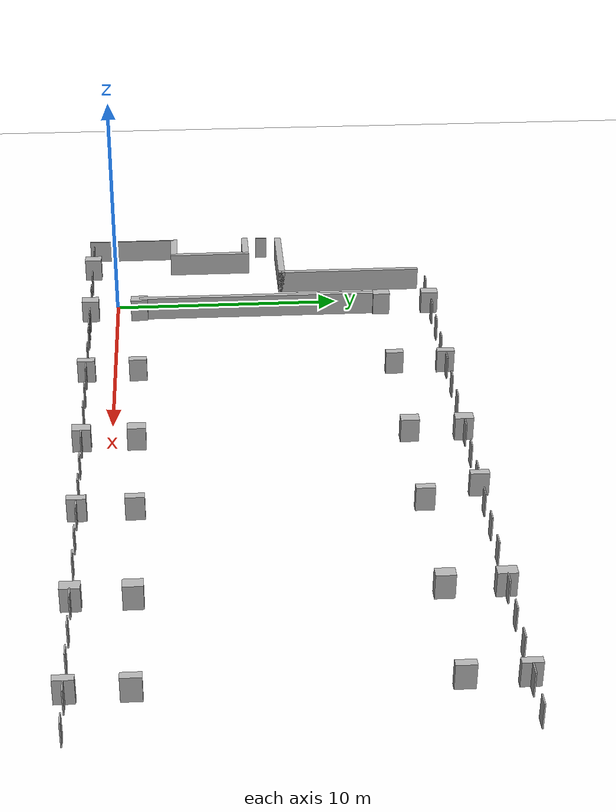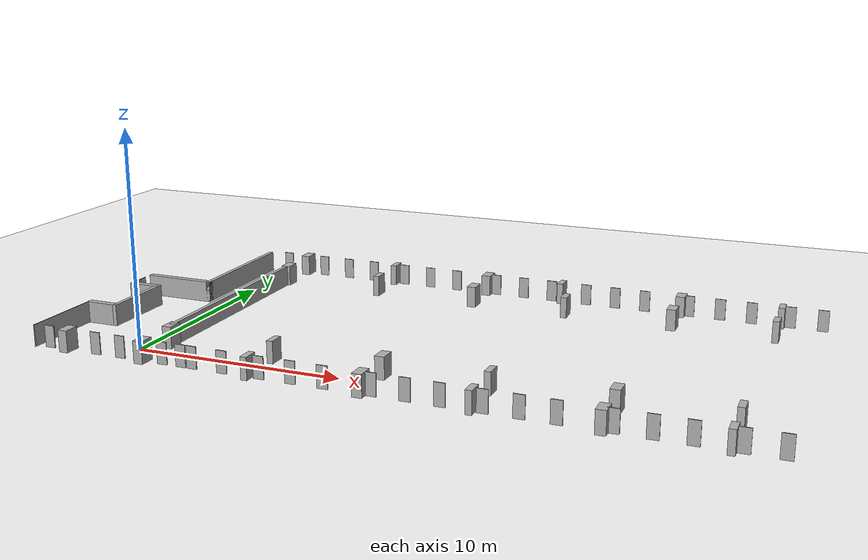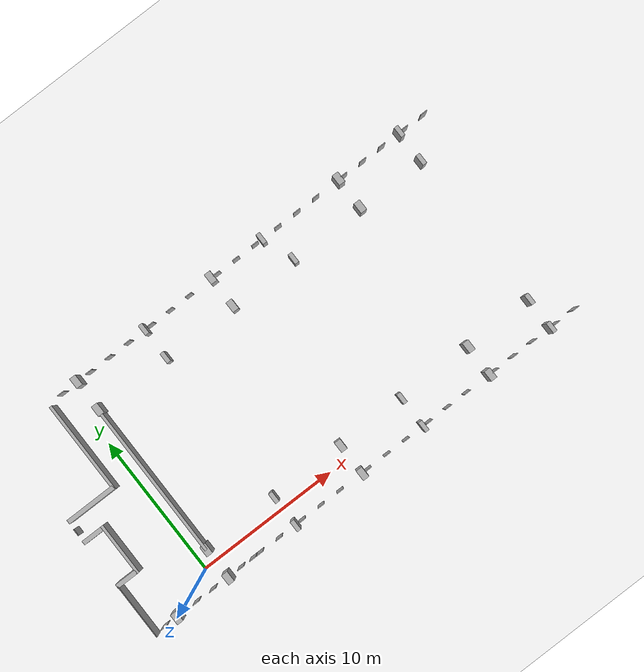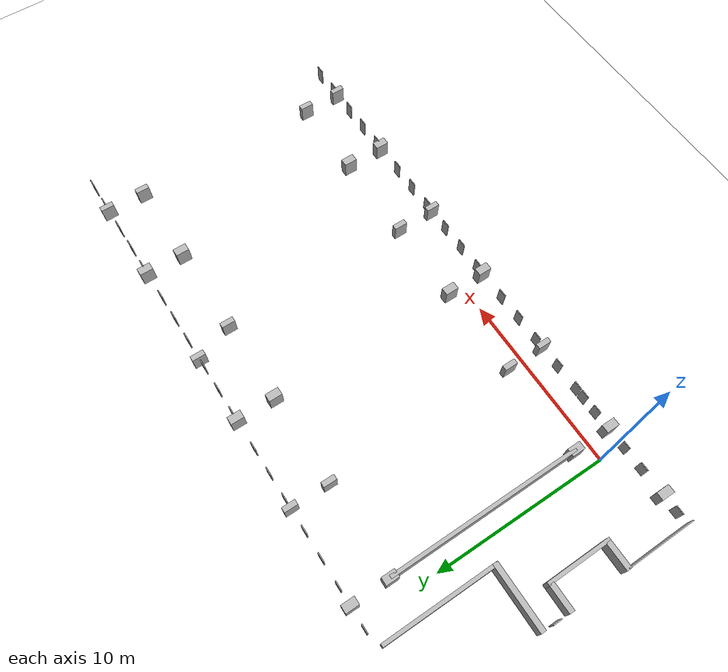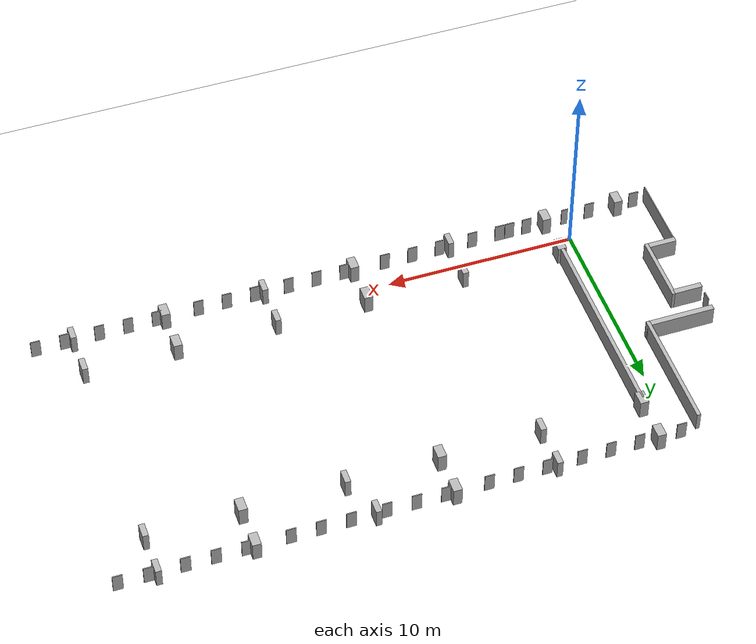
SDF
<sdf version="1.7">
 <world name="simple_corridor">
  <model name="ground_plane">
   <static>true</static>
   <link name="link">
    <collision name="collision">
     <geometry><plane><normal>0 0 1</normal><size>500 500</size></plane></geometry>
    </collision>
    <visual name="visual">
     <geometry><plane><normal>0 0 1</normal><size>500 500</size></plane></geometry>
     <material><ambient>1 1 1 1</ambient><diffuse>1 1 1 1</diffuse></material>
    </visual>
   </link>
  </model>
  <model name="wall_start_on">
   <static>true</static>
   <pose>1 6.5 0 0 0 0</pose>
   <link name="link">
    <collision name="collision"><geometry><box><size>0.2 11 2.0</size></box></geometry></collision>
    <visual name="visual">
     <geometry><box><size>0.2 11 2.0</size></box></geometry>
     <material><diffuse>0.7 0.7 0.7 1</diffuse></material>
    </visual>
   </link>
  </model>
  <model name="column_large_left_1">
   <static>true</static>
   <pose>1 12 0 0 0 0</pose>
   <link name="link">
    <collision name="collision"><geometry><box><size>0.45 0.75 2.0</size></box></geometry></collision>
    <visual name="visual">
     <geometry><box><size>0.45 0.75 2.0</size></box></geometry>
     <material><diffuse>0.7 0.7 0.7 1</diffuse></material>
    </visual>
   </link>
  </model>
  <model name="column_small_left_2">
   <static>true</static>
   <pose>6.3 12 0 0 0 0</pose>
   <link name="link">
    <collision name="collision"><geometry><box><size>0.3 0.75 2.0</size></box></geometry></collision>
    <visual name="visual">
     <geometry><box><size>0.3 0.75 2.0</size></box></geometry>
     <material><diffuse>0.7 0.7 0.7 1</diffuse></material>
    </visual>
   </link>
  </model>
  <model name="column_large_left_3">
   <static>true</static>
   <pose>11.55 12 0 0 0 0</pose>
   <link name="link">
    <collision name="collision"><geometry><box><size>0.45 0.75 2.0</size></box></geometry></collision>
    <visual name="visual">
     <geometry><box><size>0.45 0.75 2.0</size></box></geometry>
     <material><diffuse>0.7 0.7 0.7 1</diffuse></material>
    </visual>
   </link>
  </model>
  <model name="column_small_left_4">
   <static>true</static>
   <pose>16.35 12 0 0 0 0</pose>
   <link name="link">
    <collision name="collision"><geometry><box><size>0.3 0.75 2.0</size></box></geometry></collision>
    <visual name="visual">
     <geometry><box><size>0.3 0.75 2.0</size></box></geometry>
     <material><diffuse>0.7 0.7 0.7 1</diffuse></material>
    </visual>
   </link>
  </model>
  <model name="column_large_left_5">
   <static>true</static>
   <pose>21.6 12 0 0 0 0</pose>
   <link name="link">
    <collision name="collision"><geometry><box><size>0.45 0.75 2.0</size></box></geometry></collision>
    <visual name="visual">
     <geometry><box><size>0.45 0.75 2.0</size></box></geometry>
     <material><diffuse>0.7 0.7 0.7 1</diffuse></material>
    </visual>
   </link>
  </model>
  <model name="column_small_left_6">
   <static>true</static>
   <pose>26.4 12 0 0 0 0</pose>
   <link name="link">
    <collision name="collision"><geometry><box><size>0.3 0.75 2.0</size></box></geometry></collision>
    <visual name="visual">
     <geometry><box><size>0.3 0.75 2.0</size></box></geometry>
     <material><diffuse>0.7 0.7 0.7 1</diffuse></material>
    </visual>
   </link>
  </model>
  <model name="column_large_right_1">
   <static>true</static>
   <pose>1 1 0 0 0 0</pose>
   <link name="link">
    <collision name="collision"><geometry><box><size>0.45 0.75 2.0</size></box></geometry></collision>
    <visual name="visual">
     <geometry><box><size>0.45 0.75 2.0</size></box></geometry>
     <material><diffuse>0.7 0.7 0.7 1</diffuse></material>
    </visual>
   </link>
  </model>
  <model name="column_small_right_2">
   <static>true</static>
   <pose>6.3 1 0 0 0 0</pose>
   <link name="link">
    <collision name="collision"><geometry><box><size>0.3 0.75 2.0</size></box></geometry></collision>
    <visual name="visual">
     <geometry><box><size>0.3 0.75 2.0</size></box></geometry>
     <material><diffuse>0.7 0.7 0.7 1</diffuse></material>
    </visual>
   </link>
  </model>
  <model name="column_large_right_3">
   <static>true</static>
   <pose>11.55 1 0 0 0 0</pose>
   <link name="link">
    <collision name="collision"><geometry><box><size>0.45 0.75 2.0</size></box></geometry></collision>
    <visual name="visual">
     <geometry><box><size>0.45 0.75 2.0</size></box></geometry>
     <material><diffuse>0.7 0.7 0.7 1</diffuse></material>
    </visual>
   </link>
  </model>
  <model name="column_small_right_4">
   <static>true</static>
   <pose>16.35 1 0 0 0 0</pose>
   <link name="link">
    <collision name="collision"><geometry><box><size>0.3 0.75 2.0</size></box></geometry></collision>
    <visual name="visual">
     <geometry><box><size>0.3 0.75 2.0</size></box></geometry>
     <material><diffuse>0.7 0.7 0.7 1</diffuse></material>
    </visual>
   </link>
  </model>
  <model name="column_large_right_5">
   <static>true</static>
   <pose>21.6 1 0 0 0 0</pose>
   <link name="link">
    <collision name="collision"><geometry><box><size>0.45 0.75 2.0</size></box></geometry></collision>
    <visual name="visual">
     <geometry><box><size>0.45 0.75 2.0</size></box></geometry>
     <material><diffuse>0.7 0.7 0.7 1</diffuse></material>
    </visual>
   </link>
  </model>
  <model name="column_small_right_6">
   <static>true</static>
   <pose>26.4 1 0 0 0 0</pose>
   <link name="link">
    <collision name="collision"><geometry><box><size>0.3 0.75 2.0</size></box></geometry></collision>
    <visual name="visual">
     <geometry><box><size>0.3 0.75 2.0</size></box></geometry>
     <material><diffuse>0.7 0.7 0.7 1</diffuse></material>
    </visual>
   </link>
  </model>
  <model name="ban_large_left_1">
   <static>true</static>
   <pose>1 14.2 0 0 0 0</pose>
   <link name="link">
    <collision name="collision"><geometry><box><size>0.45 0.75 2.0</size></box></geometry></collision>
    <visual name="visual">
     <geometry><box><size>0.45 0.75 2.0</size></box></geometry>
     <material><diffuse>0.7 0.7 0.7 1</diffuse></material>
    </visual>
   </link>
  </model>
  <model name="ban_small_left_2">
   <static>true</static>
   <pose>6.3 14.2 0 0 0 0</pose>
   <link name="link">
    <collision name="collision"><geometry><box><size>0.3 0.75 2.0</size></box></geometry></collision>
    <visual name="visual">
     <geometry><box><size>0.3 0.75 2.0</size></box></geometry>
     <material><diffuse>0.7 0.7 0.7 1</diffuse></material>
    </visual>
   </link>
  </model>
  <model name="ban_large_left_3">
   <static>true</static>
   <pose>11.55 14.2 0 0 0 0</pose>
   <link name="link">
    <collision name="collision"><geometry><box><size>0.45 0.75 2.0</size></box></geometry></collision>
    <visual name="visual">
     <geometry><box><size>0.45 0.75 2.0</size></box></geometry>
     <material><diffuse>0.7 0.7 0.7 1</diffuse></material>
    </visual>
   </link>
  </model>
  <model name="ban_small_left_4">
   <static>true</static>
   <pose>15.53 14.2 0 0 0 0</pose>
   <link name="link">
    <collision name="collision"><geometry><box><size>0.3 0.75 2.0</size></box></geometry></collision>
    <visual name="visual">
     <geometry><box><size>0.3 0.75 2.0</size></box></geometry>
     <material><diffuse>0.7 0.7 0.7 1</diffuse></material>
    </visual>
   </link>
  </model>
  <model name="ban_large_left_5">
   <static>true</static>
   <pose>21.6 14.2 0 0 0 0</pose>
   <link name="link">
    <collision name="collision"><geometry><box><size>0.45 0.75 2.0</size></box></geometry></collision>
    <visual name="visual">
     <geometry><box><size>0.45 0.75 2.0</size></box></geometry>
     <material><diffuse>0.7 0.7 0.7 1</diffuse></material>
    </visual>
   </link>
  </model>
  <model name="ban_small_left_6">
   <static>true</static>
   <pose>26.4 14.2 0 0 0 0</pose>
   <link name="link">
    <collision name="collision"><geometry><box><size>0.3 0.75 2.0</size></box></geometry></collision>
    <visual name="visual">
     <geometry><box><size>0.3 0.75 2.0</size></box></geometry>
     <material><diffuse>0.7 0.7 0.7 1</diffuse></material>
    </visual>
   </link>
  </model>
  <model name="ban_large_right_1">
   <static>true</static>
   <pose>1 -1.2 0 0 0 0</pose>
   <link name="link">
    <collision name="collision"><geometry><box><size>0.45 0.75 2.0</size></box></geometry></collision>
    <visual name="visual">
     <geometry><box><size>0.45 0.75 2.0</size></box></geometry>
     <material><diffuse>0.7 0.7 0.7 1</diffuse></material>
    </visual>
   </link>
  </model>
  <model name="ban_small_right_2">
   <static>true</static>
   <pose>6.3 -1.2 0 0 0 0</pose>
   <link name="link">
    <collision name="collision"><geometry><box><size>0.3 0.75 2.0</size></box></geometry></collision>
    <visual name="visual">
     <geometry><box><size>0.3 0.75 2.0</size></box></geometry>
     <material><diffuse>0.7 0.7 0.7 1</diffuse></material>
    </visual>
   </link>
  </model>
  <model name="ban_large_right_3">
   <static>true</static>
   <pose>11.55 -1.2 0 0 0 0</pose>
   <link name="link">
    <collision name="collision"><geometry><box><size>0.45 0.75 2.0</size></box></geometry></collision>
    <visual name="visual">
     <geometry><box><size>0.45 0.75 2.0</size></box></geometry>
     <material><diffuse>0.7 0.7 0.7 1</diffuse></material>
    </visual>
   </link>
  </model>
  <model name="ban_small_right_4">
   <static>true</static>
   <pose>16.35 -1.2 0 0 0 0</pose>
   <link name="link">
    <collision name="collision"><geometry><box><size>0.3 0.75 2.0</size></box></geometry></collision>
    <visual name="visual">
     <geometry><box><size>0.3 0.75 2.0</size></box></geometry>
     <material><diffuse>0.7 0.7 0.7 1</diffuse></material>
    </visual>
   </link>
  </model>
  <model name="ban_large_right_5">
   <static>true</static>
   <pose>21.6 -1.2 0 0 0 0</pose>
   <link name="link">
    <collision name="collision"><geometry><box><size>0.45 0.75 2.0</size></box></geometry></collision>
    <visual name="visual">
     <geometry><box><size>0.45 0.75 2.0</size></box></geometry>
     <material><diffuse>0.7 0.7 0.7 1</diffuse></material>
    </visual>
   </link>
  </model>
  <model name="ban_small_right_6">
   <static>true</static>
   <pose>26.4 -1.2 0 0 0 0</pose>
   <link name="link">
    <collision name="collision"><geometry><box><size>0.3 0.75 2.0</size></box></geometry></collision>
    <visual name="visual">
     <geometry><box><size>0.3 0.75 2.0</size></box></geometry>
     <material><diffuse>0.7 0.7 0.7 1</diffuse></material>
    </visual>
   </link>
  </model>
  <model name="bar_left_1">
   <static>true</static>
   <pose>2 14.2 0 0 0 0</pose>
   <link name="link">
    <collision name="collision"><geometry><box><size>0.5 0.05 2.0</size></box></geometry></collision>
    <visual name="visual">
     <geometry><box><size>0.5 0.05 2.0</size></box></geometry>
     <material><diffuse>0.7 0.7 0.7 1</diffuse></material>
    </visual>
   </link>
  </model>
  <model name="bar_left_2">
   <static>true</static>
   <pose>3.5 14.2 0 0 0 0</pose>
   <link name="link">
    <collision name="collision"><geometry><box><size>0.5 0.05 2.0</size></box></geometry></collision>
    <visual name="visual">
     <geometry><box><size>0.5 0.05 2.0</size></box></geometry>
     <material><diffuse>0.7 0.7 0.7 1</diffuse></material>
    </visual>
   </link>
  </model>
  <model name="bar_left_3">
   <static>true</static>
   <pose>5 14.2 0 0 0 0</pose>
   <link name="link">
    <collision name="collision"><geometry><box><size>0.5 0.05 2.0</size></box></geometry></collision>
    <visual name="visual">
     <geometry><box><size>0.5 0.05 2.0</size></box></geometry>
     <material><diffuse>0.7 0.7 0.7 1</diffuse></material>
    </visual>
   </link>
  </model>
  <model name="bar_left_4">
   <static>true</static>
   <pose>6.8 14.2 0 0 0 0</pose>
   <link name="link">
    <collision name="collision"><geometry><box><size>0.5 0.05 2.0</size></box></geometry></collision>
    <visual name="visual">
     <geometry><box><size>0.5 0.05 2.0</size></box></geometry>
     <material><diffuse>0.7 0.7 0.7 1</diffuse></material>
    </visual>
   </link>
  </model>
  <model name="bar_left_5">
   <static>true</static>
   <pose>8.3 14.2 0 0 0 0</pose>
   <link name="link">
    <collision name="collision"><geometry><box><size>0.5 0.05 2.0</size></box></geometry></collision>
    <visual name="visual">
     <geometry><box><size>0.5 0.05 2.0</size></box></geometry>
     <material><diffuse>0.7 0.7 0.7 1</diffuse></material>
    </visual>
   </link>
  </model>
  <model name="bar_left_6">
   <static>true</static>
   <pose>9.8 14.2 0 0 0 0</pose>
   <link name="link">
    <collision name="collision"><geometry><box><size>0.5 0.05 2.0</size></box></geometry></collision>
    <visual name="visual">
     <geometry><box><size>0.5 0.05 2.0</size></box></geometry>
     <material><diffuse>0.7 0.7 0.7 1</diffuse></material>
    </visual>
   </link>
  </model>
  <model name="bar_left_7">
   <static>true</static>
   <pose>12 14.2 0 0 0 0</pose>
   <link name="link">
    <collision name="collision"><geometry><box><size>0.5 0.05 2.0</size></box></geometry></collision>
    <visual name="visual">
     <geometry><box><size>0.5 0.05 2.0</size></box></geometry>
     <material><diffuse>0.7 0.7 0.7 1</diffuse></material>
    </visual>
   </link>
  </model>
  <model name="bar_left_8">
   <static>true</static>
   <pose>13.5 14.2 0 0 0 0</pose>
   <link name="link">
    <collision name="collision"><geometry><box><size>0.5 0.05 2.0</size></box></geometry></collision>
    <visual name="visual">
     <geometry><box><size>0.5 0.05 2.0</size></box></geometry>
     <material><diffuse>0.7 0.7 0.7 1</diffuse></material>
    </visual>
   </link>
  </model>
  <model name="bar_left_9">
   <static>true</static>
   <pose>15 14.2 0 0 0 0</pose>
   <link name="link">
    <collision name="collision"><geometry><box><size>0.5 0.05 2.0</size></box></geometry></collision>
    <visual name="visual">
     <geometry><box><size>0.5 0.05 2.0</size></box></geometry>
     <material><diffuse>0.7 0.7 0.7 1</diffuse></material>
    </visual>
   </link>
  </model>
  <model name="bar_left_10">
   <static>true</static>
   <pose>16.8 14.2 0 0 0 0</pose>
   <link name="link">
    <collision name="collision"><geometry><box><size>0.5 0.05 2.0</size></box></geometry></collision>
    <visual name="visual">
     <geometry><box><size>0.5 0.05 2.0</size></box></geometry>
     <material><diffuse>0.7 0.7 0.7 1</diffuse></material>
    </visual>
   </link>
  </model>
  <model name="bar_left_11">
   <static>true</static>
   <pose>18.3 14.2 0 0 0 0</pose>
   <link name="link">
    <collision name="collision"><geometry><box><size>0.5 0.05 2.0</size></box></geometry></collision>
    <visual name="visual">
     <geometry><box><size>0.5 0.05 2.0</size></box></geometry>
     <material><diffuse>0.7 0.7 0.7 1</diffuse></material>
    </visual>
   </link>
  </model>
  <model name="bar_left_12">
   <static>true</static>
   <pose>19.8 14.2 0 0 0 0</pose>
   <link name="link">
    <collision name="collision"><geometry><box><size>0.5 0.05 2.0</size></box></geometry></collision>
    <visual name="visual">
     <geometry><box><size>0.5 0.05 2.0</size></box></geometry>
     <material><diffuse>0.7 0.7 0.7 1</diffuse></material>
    </visual>
   </link>
  </model>
  <model name="bar_left_13">
   <static>true</static>
   <pose>22 14.2 0 0 0 0</pose>
   <link name="link">
    <collision name="collision"><geometry><box><size>0.5 0.05 2.0</size></box></geometry></collision>
    <visual name="visual">
     <geometry><box><size>0.5 0.05 2.0</size></box></geometry>
     <material><diffuse>0.7 0.7 0.7 1</diffuse></material>
    </visual>
   </link>
  </model>
  <model name="bar_left_14">
   <static>true</static>
   <pose>23.5 14.2 0 0 0 0</pose>
   <link name="link">
    <collision name="collision"><geometry><box><size>0.5 0.05 2.0</size></box></geometry></collision>
    <visual name="visual">
     <geometry><box><size>0.5 0.05 2.0</size></box></geometry>
     <material><diffuse>0.7 0.7 0.7 1</diffuse></material>
    </visual>
   </link>
  </model>
  <model name="bar_left_15">
   <static>true</static>
   <pose>25 14.2 0 0 0 0</pose>
   <link name="link">
    <collision name="collision"><geometry><box><size>0.5 0.05 2.0</size></box></geometry></collision>
    <visual name="visual">
     <geometry><box><size>0.5 0.05 2.0</size></box></geometry>
     <material><diffuse>0.7 0.7 0.7 1</diffuse></material>
    </visual>
   </link>
  </model>
  <model name="bar_left_16">
   <static>true</static>
   <pose>26.8 14.2 0 0 0 0</pose>
   <link name="link">
    <collision name="collision"><geometry><box><size>0.5 0.05 2.0</size></box></geometry></collision>
    <visual name="visual">
     <geometry><box><size>0.5 0.05 2.0</size></box></geometry>
     <material><diffuse>0.7 0.7 0.7 1</diffuse></material>
    </visual>
   </link>
  </model>
  <model name="bar_left_17">
   <static>true</static>
   <pose>28.3 14.2 0 0 0 0</pose>
   <link name="link">
    <collision name="collision"><geometry><box><size>0.5 0.05 2.0</size></box></geometry></collision>
    <visual name="visual">
     <geometry><box><size>0.5 0.05 2.0</size></box></geometry>
     <material><diffuse>0.7 0.7 0.7 1</diffuse></material>
    </visual>
   </link>
  </model>
  <model name="bar_left_38">
   <static>true</static>
   <pose>-0.2 14.2 0 0 0 0</pose>
   <link name="link">
    <collision name="collision"><geometry><box><size>0.5 0.05 2.0</size></box></geometry></collision>
    <visual name="visual">
     <geometry><box><size>0.5 0.05 2.0</size></box></geometry>
     <material><diffuse>0.7 0.7 0.7 1</diffuse></material>
    </visual>
   </link>
  </model>
  <model name="bar_right_1">
   <static>true</static>
   <pose>2 -1.2 0 0 0 0</pose>
   <link name="link">
    <collision name="collision"><geometry><box><size>0.5 0.05 2.0</size></box></geometry></collision>
    <visual name="visual">
     <geometry><box><size>0.5 0.05 2.0</size></box></geometry>
     <material><diffuse>0.7 0.7 0.7 1</diffuse></material>
    </visual>
   </link>
  </model>
  <model name="bar_right_2">
   <static>true</static>
   <pose>3.5 -1.2 0 0 0 0</pose>
   <link name="link">
    <collision name="collision"><geometry><box><size>0.5 0.05 2.0</size></box></geometry></collision>
    <visual name="visual">
     <geometry><box><size>0.5 0.05 2.0</size></box></geometry>
     <material><diffuse>0.7 0.7 0.7 1</diffuse></material>
    </visual>
   </link>
  </model>
  <model name="bar_right_3">
   <static>true</static>
   <pose>5 -1.2 0 0 0 0</pose>
   <link name="link">
    <collision name="collision"><geometry><box><size>0.5 0.05 2.0</size></box></geometry></collision>
    <visual name="visual">
     <geometry><box><size>0.5 0.05 2.0</size></box></geometry>
     <material><diffuse>0.7 0.7 0.7 1</diffuse></material>
    </visual>
   </link>
  </model>
  <model name="bar_right_4">
   <static>true</static>
   <pose>6.8 -1.2 0 0 0 0</pose>
   <link name="link">
    <collision name="collision"><geometry><box><size>0.5 0.05 2.0</size></box></geometry></collision>
    <visual name="visual">
     <geometry><box><size>0.5 0.05 2.0</size></box></geometry>
     <material><diffuse>0.7 0.7 0.7 1</diffuse></material>
    </visual>
   </link>
  </model>
  <model name="bar_right_5">
   <static>true</static>
   <pose>8.3 -1.2 0 0 0 0</pose>
   <link name="link">
    <collision name="collision"><geometry><box><size>0.5 0.05 2.0</size></box></geometry></collision>
    <visual name="visual">
     <geometry><box><size>0.5 0.05 2.0</size></box></geometry>
     <material><diffuse>0.7 0.7 0.7 1</diffuse></material>
    </visual>
   </link>
  </model>
  <model name="bar_right_6">
   <static>true</static>
   <pose>9.8 -1.2 0 0 0 0</pose>
   <link name="link">
    <collision name="collision"><geometry><box><size>0.5 0.05 2.0</size></box></geometry></collision>
    <visual name="visual">
     <geometry><box><size>0.5 0.05 2.0</size></box></geometry>
     <material><diffuse>0.7 0.7 0.7 1</diffuse></material>
    </visual>
   </link>
  </model>
  <model name="bar_right_7">
   <static>true</static>
   <pose>12 -1.2 0 0 0 0</pose>
   <link name="link">
    <collision name="collision"><geometry><box><size>0.5 0.05 2.0</size></box></geometry></collision>
    <visual name="visual">
     <geometry><box><size>0.5 0.05 2.0</size></box></geometry>
     <material><diffuse>0.7 0.7 0.7 1</diffuse></material>
    </visual>
   </link>
  </model>
  <model name="bar_right_8">
   <static>true</static>
   <pose>13.5 -1.2 0 0 0 0</pose>
   <link name="link">
    <collision name="collision"><geometry><box><size>0.5 0.05 2.0</size></box></geometry></collision>
    <visual name="visual">
     <geometry><box><size>0.5 0.05 2.0</size></box></geometry>
     <material><diffuse>0.7 0.7 0.7 1</diffuse></material>
    </visual>
   </link>
  </model>
  <model name="bar_right_9">
   <static>true</static>
   <pose>15 -1.2 0 0 0 0</pose>
   <link name="link">
    <collision name="collision"><geometry><box><size>0.5 0.05 2.0</size></box></geometry></collision>
    <visual name="visual">
     <geometry><box><size>0.5 0.05 2.0</size></box></geometry>
     <material><diffuse>0.7 0.7 0.7 1</diffuse></material>
    </visual>
   </link>
  </model>
  <model name="bar_right_10">
   <static>true</static>
   <pose>16.8 -1.2 0 0 0 0</pose>
   <link name="link">
    <collision name="collision"><geometry><box><size>0.5 0.05 2.0</size></box></geometry></collision>
    <visual name="visual">
     <geometry><box><size>0.5 0.05 2.0</size></box></geometry>
     <material><diffuse>0.7 0.7 0.7 1</diffuse></material>
    </visual>
   </link>
  </model>
  <model name="bar_right_11">
   <static>true</static>
   <pose>18.3 -1.2 0 0 0 0</pose>
   <link name="link">
    <collision name="collision"><geometry><box><size>0.5 0.05 2.0</size></box></geometry></collision>
    <visual name="visual">
     <geometry><box><size>0.5 0.05 2.0</size></box></geometry>
     <material><diffuse>0.7 0.7 0.7 1</diffuse></material>
    </visual>
   </link>
  </model>
  <model name="bar_right_12">
   <static>true</static>
   <pose>19.8 -1.2 0 0 0 0</pose>
   <link name="link">
    <collision name="collision"><geometry><box><size>0.5 0.05 2.0</size></box></geometry></collision>
    <visual name="visual">
     <geometry><box><size>0.5 0.05 2.0</size></box></geometry>
     <material><diffuse>0.7 0.7 0.7 1</diffuse></material>
    </visual>
   </link>
  </model>
  <model name="bar_right_13">
   <static>true</static>
   <pose>22 -1.2 0 0 0 0</pose>
   <link name="link">
    <collision name="collision"><geometry><box><size>0.5 0.05 2.0</size></box></geometry></collision>
    <visual name="visual">
     <geometry><box><size>0.5 0.05 2.0</size></box></geometry>
     <material><diffuse>0.7 0.7 0.7 1</diffuse></material>
    </visual>
   </link>
  </model>
  <model name="bar_right_14">
   <static>true</static>
   <pose>23.5 -1.2 0 0 0 0</pose>
   <link name="link">
    <collision name="collision"><geometry><box><size>0.5 0.05 2.0</size></box></geometry></collision>
    <visual name="visual">
     <geometry><box><size>0.5 0.05 2.0</size></box></geometry>
     <material><diffuse>0.7 0.7 0.7 1</diffuse></material>
    </visual>
   </link>
  </model>
  <model name="bar_right_15">
   <static>true</static>
   <pose>25 -1.2 0 0 0 0</pose>
   <link name="link">
    <collision name="collision"><geometry><box><size>0.5 0.05 2.0</size></box></geometry></collision>
    <visual name="visual">
     <geometry><box><size>0.5 0.05 2.0</size></box></geometry>
     <material><diffuse>0.7 0.7 0.7 1</diffuse></material>
    </visual>
   </link>
  </model>
  <model name="bar_right_16">
   <static>true</static>
   <pose>26.8 -1.2 0 0 0 0</pose>
   <link name="link">
    <collision name="collision"><geometry><box><size>0.5 0.05 2.0</size></box></geometry></collision>
    <visual name="visual">
     <geometry><box><size>0.5 0.05 2.0</size></box></geometry>
     <material><diffuse>0.7 0.7 0.7 1</diffuse></material>
    </visual>
   </link>
  </model>
  <model name="bar_right_17">
   <static>true</static>
   <pose>28.3 -1.2 0 0 0 0</pose>
   <link name="link">
    <collision name="collision"><geometry><box><size>0.5 0.05 2.0</size></box></geometry></collision>
    <visual name="visual">
     <geometry><box><size>0.5 0.05 2.0</size></box></geometry>
     <material><diffuse>0.7 0.7 0.7 1</diffuse></material>
    </visual>
   </link>
  </model>
  <model name="bar_right_38">
   <static>true</static>
   <pose>-0.2 -1.2 0 0 0 0</pose>
   <link name="link">
    <collision name="collision"><geometry><box><size>0.5 0.05 2.0</size></box></geometry></collision>
    <visual name="visual">
     <geometry><box><size>0.5 0.05 2.0</size></box></geometry>
     <material><diffuse>0.7 0.7 0.7 1</diffuse></material>
    </visual>
   </link>
  </model>
  <model name="wall_start_under_opposite">
   <static>true</static>
   <pose>-1.2 10.7 0 0 0 0</pose>
   <link name="link">
    <collision name="collision"><geometry><box><size>0.2 6.5 2.0</size></box></geometry></collision>
    <visual name="visual">
     <geometry><box><size>0.2 6.5 2.0</size></box></geometry>
     <material><diffuse>0.7 0.7 0.7 1</diffuse></material>
    </visual>
   </link>
  </model>
  <model name="wall_1">
   <static>true</static>
   <pose>-2.9 7.6 0 0 0 0</pose>
   <link name="link">
    <collision name="collision"><geometry><box><size>3.6 0.3 2.0</size></box></geometry></collision>
    <visual name="visual">
     <geometry><box><size>3.6 0.3 2.0</size></box></geometry>
     <material><diffuse>0.7 0.7 0.7 1</diffuse></material>
    </visual>
   </link>
  </model>
  <model name="wall_2">
   <static>true</static>
   <pose>-4 6 0 0 0 0</pose>
   <link name="link">
    <collision name="collision"><geometry><box><size>1.5 0.3 2.0</size></box></geometry></collision>
    <visual name="visual">
     <geometry><box><size>1.5 0.3 2.0</size></box></geometry>
     <material><diffuse>0.7 0.7 0.7 1</diffuse></material>
    </visual>
   </link>
  </model>
  <model name="wall_3">
   <static>true</static>
   <pose>-3.2 4.3 0 0 0 0</pose>
   <link name="link">
    <collision name="collision"><geometry><box><size>0.2 3.7 2.0</size></box></geometry></collision>
    <visual name="visual">
     <geometry><box><size>0.2 3.7 2.0</size></box></geometry>
     <material><diffuse>0.7 0.7 0.7 1</diffuse></material>
    </visual>
   </link>
  </model>
  <model name="wall_4">
   <static>true</static>
   <pose>-4 2.6 0 0 0 0</pose>
   <link name="link">
    <collision name="collision"><geometry><box><size>1.5 0.3 2.0</size></box></geometry></collision>
    <visual name="visual">
     <geometry><box><size>1.5 0.3 2.0</size></box></geometry>
     <material><diffuse>0.7 0.7 0.7 1</diffuse></material>
    </visual>
   </link>
  </model>
  <model name="wall_left_1">
   <static>true</static>
   <pose>-4.7 6.8 0 0 0 0</pose>
   <link name="link">
    <collision name="collision"><geometry><box><size>0.05 0.5 2.0</size></box></geometry></collision>
    <visual name="visual">
     <geometry><box><size>0.05 0.5 2.0</size></box></geometry>
     <material><diffuse>0.7 0.7 0.7 1</diffuse></material>
    </visual>
   </link>
  </model>
  <model name="wall_left_3">
   <static>true</static>
   <pose>-4.7 0.6 0 0 0 0</pose>
   <link name="link">
    <collision name="collision"><geometry><box><size>0.05 4 2.0</size></box></geometry></collision>
    <visual name="visual">
     <geometry><box><size>0.05 4 2.0</size></box></geometry>
     <material><diffuse>0.7 0.7 0.7 1</diffuse></material>
    </visual>
   </link>
  </model>
  <model name="wall_left_4">
   <static>true</static>
   <pose>-4 -1.2 0 0 0 0</pose>
   <link name="link">
    <collision name="collision"><geometry><box><size>0.5 0.05 2.0</size></box></geometry></collision>
    <visual name="visual">
     <geometry><box><size>0.5 0.05 2.0</size></box></geometry>
     <material><diffuse>0.7 0.7 0.7 1</diffuse></material>
    </visual>
   </link>
  </model>
  <model name="wall_left_5">
   <static>true</static>
   <pose>-3 -1.2 0 0 0 0</pose>
   <link name="link">
    <collision name="collision"><geometry><box><size>0.45 0.75 2.0</size></box></geometry></collision>
    <visual name="visual">
     <geometry><box><size>0.45 0.75 2.0</size></box></geometry>
     <material><diffuse>0.7 0.7 0.7 1</diffuse></material>
    </visual>
   </link>
  </model>
  <model name="bar_left_39">
   <static>true</static>
   <pose>-1.5 -1.2 0 0 0 0</pose>
   <link name="link">
    <collision name="collision"><geometry><box><size>0.7 0.05 2.0</size></box></geometry></collision>
    <visual name="visual">
     <geometry><box><size>0.5 0.05 2.0</size></box></geometry>
     <material><diffuse>0.7 0.7 0.7 1</diffuse></material>
    </visual>
   </link>
  </model>
  <model name="bar_left_40">
   <static>true</static>
   <pose>2.95 -1.2 0 0 0 0</pose>
   <link name="link">
    <collision name="collision"><geometry><box><size>0.5 0.05 2.0</size></box></geometry></collision>
    <visual name="visual">
     <geometry><box><size>0.5 0.05 2.0</size></box></geometry>
     <material><diffuse>0.7 0.7 0.7 1</diffuse></material>
    </visual>
   </link>
  </model>
  <model name="start_marker">
   <static>true</static>
   <link name="link">
    <visual name="visual">
     <geometry><cylinder><radius>0.05</radius><length>0.02</length></cylinder></geometry>
     <material><diffuse>0.1 0.8 0.1 1</diffuse></material>
    </visual>
   </link>
  </model>
 </world>
</sdf>
